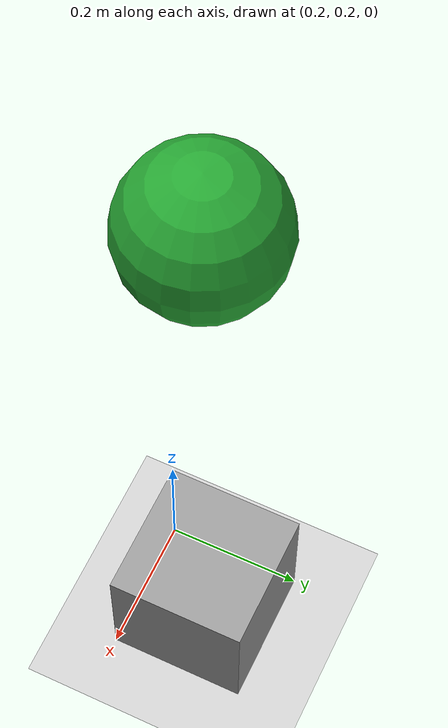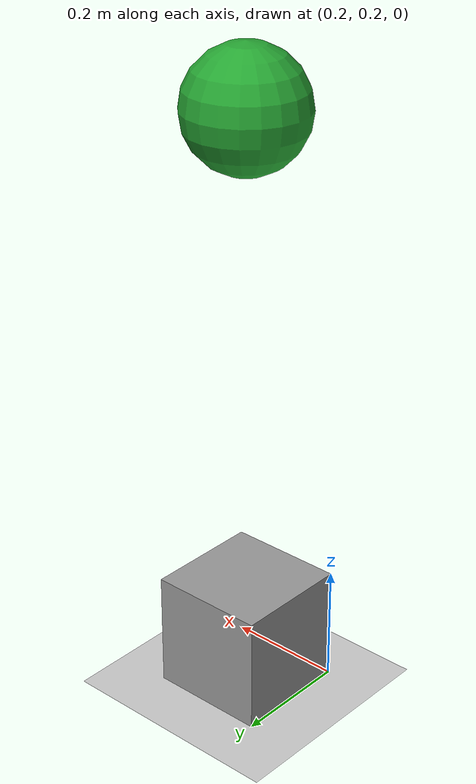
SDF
<?xml version="1.0" ?>
<sdf version="1.5">
  <world name="default">
    <!-- Define the update rates!  The max_step_size is the dt for -->
    <!-- each simulation step (1ms).  The real_time_update_rate is -->
    <!-- the max number of steps per actual second (1000).         -->
    <!-- So this will run at MOST at realtime!                     -->
    <physics type="ode">
      <max_step_size>0.001</max_step_size>
      <real_time_update_rate>1000</real_time_update_rate>
    </physics>

    <!-- Gravity :) -->
    <gravity>0.0 0.0 -9.81</gravity>

    <!-- A global light source -->
    <include>
      <uri>model://sun</uri>
    </include>
    <!-- A ground plane -->
    <include>
      <uri>model://ground_plane</uri>
    </include>

    <!-- You can add other models.  Either indirectly (including -->

    <model name="box">
      <pose>0.3 0.3 0.1 0 0 0</pose>
      <link name="link">
	<inertial>
          <mass>1.000</mass>
          <inertia>
            <ixx>0.006667</ixx>
            <iyy>0.006667</iyy>
            <izz>0.006667</izz>
            <ixy>0</ixy>
            <ixz>0</ixz>
            <iyz>0</iyz>
          </inertia>
	</inertial>
        <collision name="collision">
          <geometry>
            <box>
              <size>0.2 0.2 0.2</size>
            </box>
          </geometry>
          <surface>
            <bounce>
              <restitution_coefficient>1</restitution_coefficient>
              <threshold>0.01</threshold>
            </bounce>
            <contact>
              <ode>
                <max_vel>10</max_vel>
              </ode>
            </contact>
          </surface>
        </collision>
        <visual name="visual">
          <geometry>
            <box>
              <size>0.2 0.2 0.2</size>
            </box>
          </geometry>
	  <material>
            <script>
              <name>Gazebo/Gray</name>
              <uri>file://media/materials/scripts/gazebo.material</uri>
            </script>
	  </material>
        </visual>
      </link>
    </model>

    <model name="sphere">
      <pose>0.3 0.3 1 0 0 0</pose>
      <link name="link">
	      <inertial>
          <mass>1.000</mass>
          <inertia>
            <ixx>0.004</ixx>
            <iyy>0.004</iyy>
            <izz>0.004</izz>
            <ixy>0</ixy>
            <ixz>0</ixz>
            <iyz>0</iyz>
          </inertia>
	      </inertial>
        <collision name="collision">
          <geometry>
            <sphere>
              <radius>0.1</radius>
            </sphere>
          </geometry>
          <surface>
            <bounce>
              <restitution_coefficient>1</restitution_coefficient>
              <threshold>0.01</threshold>
            </bounce>
            <contact>
              <ode>
                <max_vel>10</max_vel>
              </ode>
            </contact>
          </surface>
        </collision>
        <visual name="visual">
          <geometry>
            <sphere>
              <radius>0.1</radius>
            </sphere>
          </geometry>
	        <material>
            <script>
              <name>Gazebo/Green</name>
              <uri>file://media/materials/scripts/gazebo.material</uri>
            </script>
	        </material>
        </visual>
      </link>
    </model>

  </world>
</sdf>
